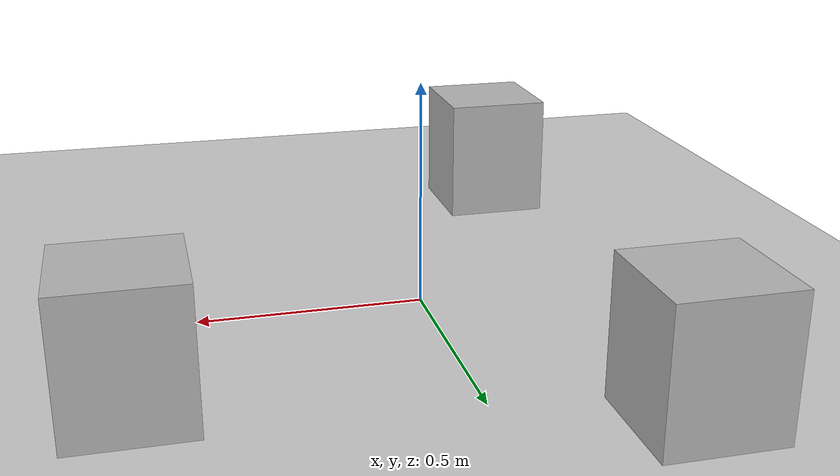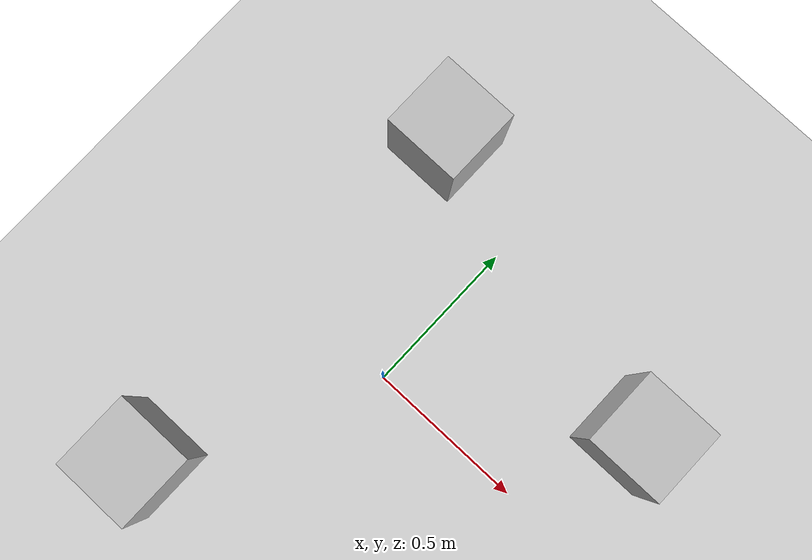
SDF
<sdf version='1.10'>
  <world name='empty'>
    <physics name='1ms' type='ignored'>
      <max_step_size>0.001</max_step_size>
      <real_time_factor>1</real_time_factor>
      <real_time_update_rate>1000</real_time_update_rate>
    </physics>
    <plugin name='gz::sim::systems::Physics' filename='gz-sim-physics-system'/>
    <plugin name='gz::sim::systems::UserCommands' filename='gz-sim-user-commands-system'/>
    <plugin name='gz::sim::systems::SceneBroadcaster' filename='gz-sim-scene-broadcaster-system'/>
    <plugin name='gz::sim::systems::Contact' filename='gz-sim-contact-system'/>
    <gravity>0 0 -9.8000000000000007</gravity>
    <magnetic_field>5.5644999999999998e-06 2.2875799999999999e-05 -4.2388400000000002e-05</magnetic_field>
    <atmosphere type='adiabatic'/>
    <scene>
      <ambient>0.400000006 0.400000006 0.400000006 1</ambient>
      <background>0.699999988 0.699999988 0.699999988 1</background>
      <shadows>true</shadows>
    </scene>
    <model name='ground_plane'>
      <static>true</static>
      <link name='link'>
        <collision name='collision'>
          <geometry>
            <plane>
              <normal>0 0 1</normal>
              <size>100 100</size>
            </plane>
          </geometry>
          <surface>
            <friction>
              <ode/>
            </friction>
            <bounce/>
            <contact/>
          </surface>
        </collision>
        <visual name='visual'>
          <geometry>
            <plane>
              <normal>0 0 1</normal>
              <size>100 100</size>
            </plane>
          </geometry>
          <material>
            <ambient>0.800000012 0.800000012 0.800000012 1</ambient>
            <diffuse>0.800000012 0.800000012 0.800000012 1</diffuse>
            <specular>0.800000012 0.800000012 0.800000012 1</specular>
          </material>
        </visual>
        <pose>0 0 0 0 0 0</pose>
        <inertial>
          <pose>0 0 0 0 0 0</pose>
          <mass>1</mass>
          <inertia>
            <ixx>1</ixx>
            <ixy>0</ixy>
            <ixz>0</ixz>
            <iyy>1</iyy>
            <iyz>0</iyz>
            <izz>1</izz>
          </inertia>
        </inertial>
        <enable_wind>false</enable_wind>
      </link>
      <pose>0 0 0 0 0 0</pose>
      <self_collide>false</self_collide>
    </model>
    <light name='sun' type='directional'>
      <pose>0 0 10 0 0 0</pose>
      <cast_shadows>true</cast_shadows>
      <intensity>1</intensity>
      <direction>-0.5 0.10000000000000001 -0.90000000000000002</direction>
      <diffuse>0.800000012 0.800000012 0.800000012 1</diffuse>
      <specular>0.200000003 0.200000003 0.200000003 1</specular>
      <attenuation>
        <range>1000</range>
        <linear>0.01</linear>
        <constant>0.90000000000000002</constant>
        <quadratic>0.001</quadratic>
      </attenuation>
      <spot>
        <inner_angle>0</inner_angle>
        <outer_angle>0</outer_angle>
        <falloff>0</falloff>
      </spot>
    </light>

    <!-- UV Exposure - front right -->
    <model name="station_uv">
        <static>true</static>
        <pose>0.65 0.375 0.15 0 0 0</pose>
        <link name="link">
            <visual name="v"><geometry><box><size>0.25 0.25 0.3</size></box></geometry></visual>
            <collision name="c"><geometry><box><size>0.25 0.25 0.3</size></box></geometry></collision>
        </link>
    </model>

    <!-- Photoresist Spinner - left -->
    <model name="station_spinner">
        <static>true</static>
        <pose>-0.35 0.65 0.15 0 0 0</pose>
        <link name="link">
            <visual name="v"><geometry><box><size>0.25 0.25 0.3</size></box></geometry></visual>
            <collision name="c"><geometry><box><size>0.25 0.25 0.3</size></box></geometry></collision>
        </link>
    </model>

    <!-- Developer - front left -->
    <model name="station_dev">
        <static>true</static>
        <pose>-0.35 -0.65 0.15 0 0 0</pose>
        <link name="link">
            <visual name="v"><geometry><box><size>0.25 0.25 0.3</size></box></geometry></visual>
            <collision name="c"><geometry><box><size>0.25 0.25 0.3</size></box></geometry></collision>
        </link>
    </model>

  </world>
</sdf>
